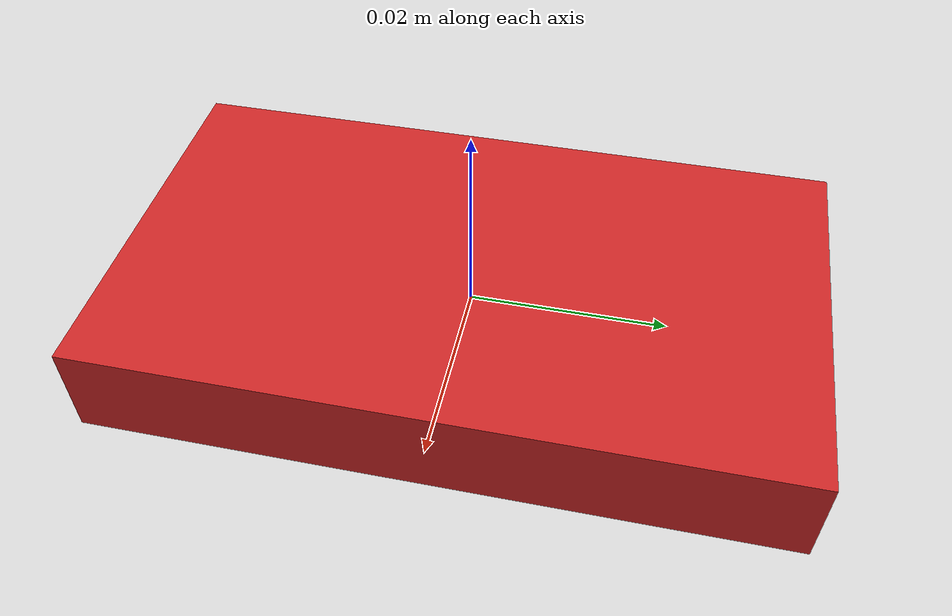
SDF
<?xml version="1.0" ?>
<sdf version="1.6">
  <model name="camera_sensor">
    <pose>-0 4e-06 -0 3.14159 1.55448 3.14159</pose>
    <link name="link">
      <inertial>
        <mass>0.1</mass>
      </inertial>

      <visual name="visual">
        <geometry>
          <box>
            <size>0.01 0.07 0.04</size>
          </box>
        </geometry>
        <material>
          <script>
            <uri>file://media/materials/scripts/gazebo.material</uri>
            <name>Gazebo/Red</name>
          </script>
        </material>
      </visual>

      <collision name="collision">
        <pose>0 0 -0.0145 0 0 0</pose>
        <geometry>
          <box>
            <size>0.01 0.07 0.04</size>
          </box>
        </geometry>
      </collision>

      <sensor name='camera' type='camera'>
        <camera>
          <horizontal_fov>1.3962634</horizontal_fov>
          <image>
            <width>800</width>
            <height>800</height>
          </image>
          <clip>
            <near>0.02</near>
            <far>300</far>
          </clip>
        </camera>
        <always_on>1</always_on>
        <update_rate>10</update_rate>
        <visualize>1</visualize>

        <plugin name="camera_controller" filename="libCameraPlugin.so"></plugin>
      </sensor>

    </link>
  </model>
</sdf>
